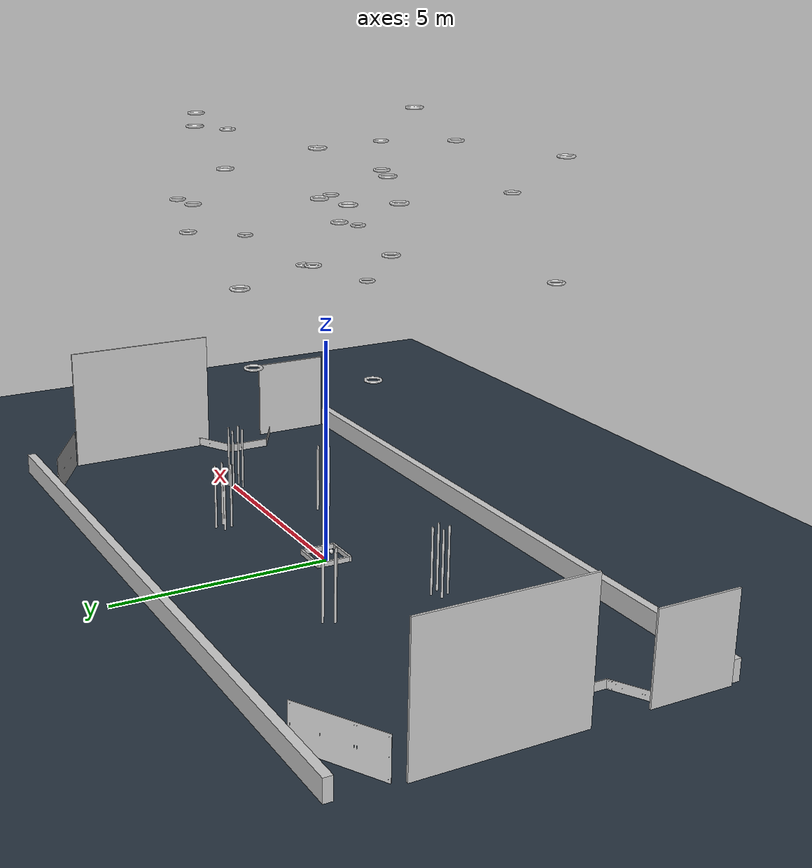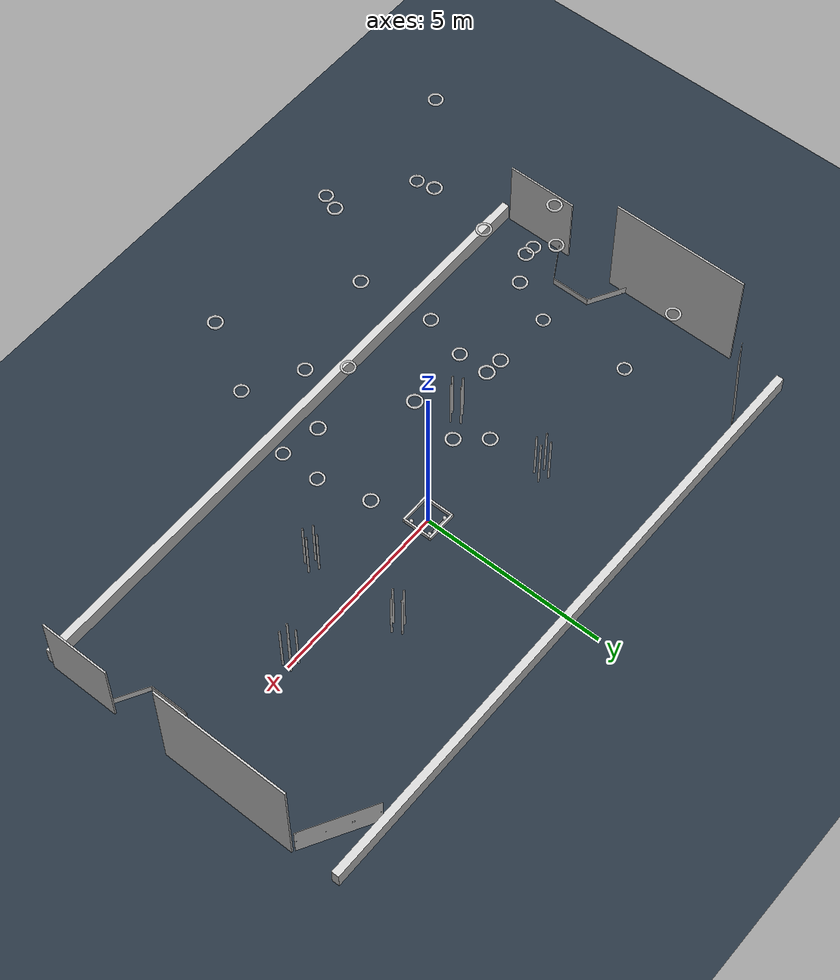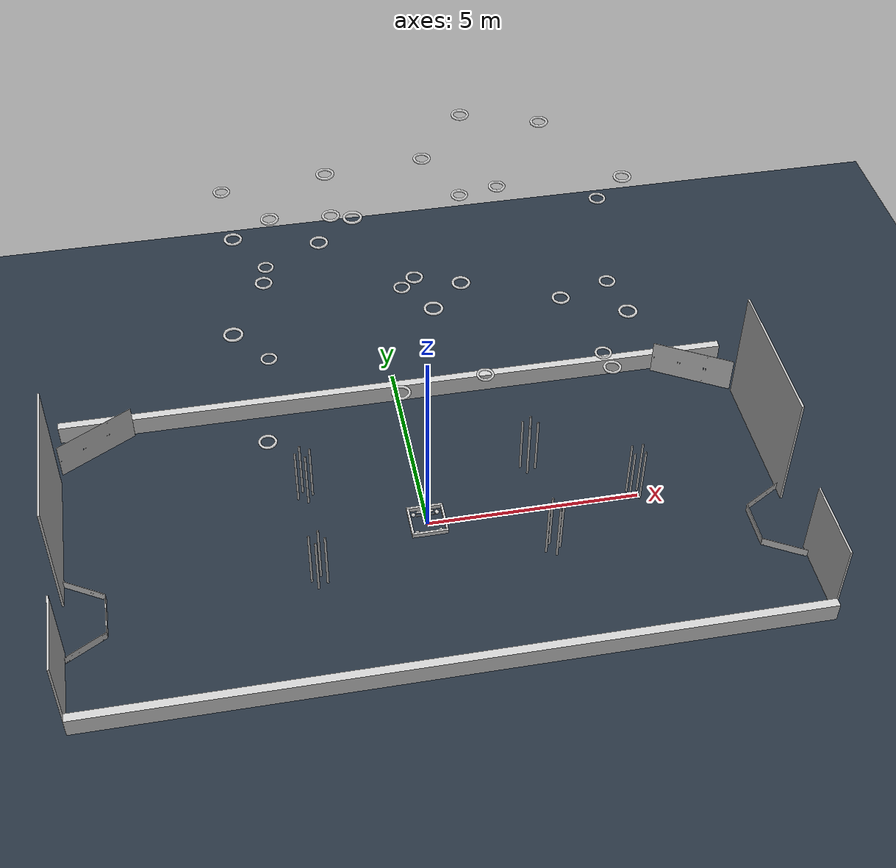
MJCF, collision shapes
<mujoco model="FRC" >
  <extension />
  <compiler angle="radian" coordinate="local" />
  <option timestep="0.003" integrator="implicitfast" cone="elliptic" />
  <size njmax="20000" nconmax="10000" />
  <default >
    <default class="visual" >
      <geom type="mesh" group="2" contype="0" conaffinity="0" />
    </default>
    <default class="collision" >
      <geom type="mesh" group="3" contype="1" conaffinity="1" />
    </default>
  </default>
  <asset >
    <texture name="groundplane" type="2d" builtin="checker" rgb1=".2 .3 .4" rgb2=".1 .1 .1" width="100" height="100" mark="cross" markrgb=".8 .8 .8" />
    <material name="groundplane" texture="groundplane" texrepeat="5 5" texuniform="true" />
    <material name="grey" rgba="0.4 0.4 0.4 1.0" />
    <material name="white" rgba="0.8 0.8 0.8 1.0" />
    <material name="bright_white" rgba="1 1 1 1.0" />
    <material name="black" rgba="0.2 0.2 0.2 1.0" />
    <material name="red" rgba="0.9 0 0 1.0" />
    <material name="blue" rgba="0 0 0.9 1.0" />
    <material name="bumper_blue" rgba="0.2 0.2 0.8 1.0" />
    <material name="orange" rgba="1 0.5 0 1.0" />
    <mesh name="audience_side_field_wall" file="frc_python/resources/AudienceSideFieldWall.stl" />
    <mesh name="scoring_side_field_wall" file="frc_python/resources/ScoringSideFieldWall.stl" />
    <mesh name="red_alliance_driver_station" file="frc_python/resources/RedAllianceDriverStation.stl" />
    <mesh name="blue_alliance_driver_station" file="frc_python/resources/BlueAllianceDriverStation.stl" />
    <mesh name="red_speaker" file="frc_python/resources/RedSpeaker.stl" />
    <mesh name="red_source" file="frc_python/resources/RedSource.stl" />
    <mesh name="red_stage" file="frc_python/resources/RedStage.stl" />
    <mesh name="red_amp" file="frc_python/resources/RedAmp.stl" />
    <mesh name="blue_speaker" file="frc_python/resources/BlueSpeaker.stl" />
    <mesh name="blue_source" file="frc_python/resources/BlueSource.stl" />
    <mesh name="blue_stage" file="frc_python/resources/BlueStage.stl" />
    <mesh name="blue_amp" file="frc_python/resources/BlueAmp.stl" />
    <mesh name="red_speaker_lower_left_wall_collision" file="frc_python/resources/collisions/RedSpeakerLowerLeftWall.stl" />
    <mesh name="red_speaker_lower_right_wall_collision" file="frc_python/resources/collisions/RedSpeakerLowerRightWall.stl" />
    <mesh name="red_source_wall_collision" file="frc_python/resources/collisions/RedSourceWall.stl" />
    <mesh name="red_stage_collision_1" file="frc_python/resources/collisions/RedStage1.stl" />
    <mesh name="red_stage_collision_2" file="frc_python/resources/collisions/RedStage2.stl" />
    <mesh name="red_stage_collision_3" file="frc_python/resources/collisions/RedStage2.stl" />
    <mesh name="blue_speaker_lower_left_wall_collision" file="frc_python/resources/collisions/BlueSpeakerLowerLeftWall.stl" />
    <mesh name="blue_speaker_lower_right_wall_collision" file="frc_python/resources/collisions/BlueSpeakerLowerRightWall.stl" />
    <mesh name="blue_source_wall_collision" file="frc_python/resources/collisions/BlueSourceWall.stl" />
    <mesh name="blue_stage_collision_1" file="frc_python/resources/collisions/BlueStage1.stl" />
    <mesh name="blue_stage_collision_2" file="frc_python/resources/collisions/BlueStage2.stl" />
    <mesh name="blue_stage_collision_3" file="frc_python/resources/collisions/BlueStage3.stl" />
    <mesh name="carpet" file="frc_python/resources/Carpet.stl" />
    <mesh name="red_tape" file="frc_python/resources/RedTape.stl" />
    <mesh name="blue_tape" file="frc_python/resources/BlueTape.stl" />
    <mesh name="white_tape" file="frc_python/resources/WhiteTape.stl" />
    <mesh name="note" file="frc_python/resources/collisions/Note.stl" />
    <mesh name="fl_swerve_module" file="frc_python/resources/subsystems/drivetrain/FLSwerveModule.stl" />
    <mesh name="fr_swerve_module" file="frc_python/resources/subsystems/drivetrain/FRSwerveModule.stl" />
    <mesh name="swerve_module_turret" file="frc_python/resources/subsystems/drivetrain/FLSwerveModuleTurret.stl" />
    <mesh name="swerve_module_wheel" file="frc_python/resources/subsystems/drivetrain/FLSwerveModuleWheel.stl" />
    <mesh name="drivetrain_frame" file="frc_python/resources/subsystems/drivetrain/DriveTrainFrame.stl" />
    <mesh name="bumpers" file="frc_python/resources/subsystems/drivetrain/Bumpers.stl" />
    <mesh name="intake_roller_1" file="frc_python/resources/subsystems/intake/IntakeRoller1.stl" />
  </asset>
  <worldbody >
    <light pos="1 -1 1.5" dir="-1 1 -1" diffuse="0.5 0.5 0.5" directional="true" />
    <geom name="floor" size="0 0 0.05" type="plane" material="groundplane" friction="1.3 0.1 0.01" />
    <geom mesh="audience_side_field_wall" class="visual" material="white" />
    <geom mesh="scoring_side_field_wall" class="visual" material="white" />
    <geom mesh="red_alliance_driver_station" class="visual" material="white" />
    <geom mesh="blue_alliance_driver_station" class="visual" material="white" />
    <geom mesh="red_speaker" class="visual" material="white" />
    <geom mesh="red_source" class="visual" material="white" />
    <geom mesh="red_stage" class="visual" material="white" />
    <geom mesh="red_amp" class="visual" material="white" />
    <geom mesh="blue_speaker" class="visual" material="white" />
    <geom mesh="blue_source" class="visual" material="white" />
    <geom mesh="blue_stage" class="visual" material="white" />
    <geom mesh="blue_amp" class="visual" material="white" />
    <geom mesh="carpet" class="visual" material="white" friction="1.3 0.1 0.01" />
    <geom mesh="red_tape" class="visual" material="white" />
    <geom mesh="blue_tape" class="visual" material="white" />
    <geom mesh="white_tape" class="visual" material="white" />
    <geom name="audience_side_field_wall_collision" type="box" pos="0 -4.206 0.2615" size="8.268 0.1 0.241" class="collision" material="white" friction="0.3 0.005 0.0001" />
    <geom name="scoring_side_field_wall_collision" type="box" pos="0 4.206 0.2615" size="8.268 0.1 0.241" class="collision" material="white" friction="0.3 0.005 0.0001" />
    <geom name="red_alliance_driver_station_collision_large" type="box" pos="8.2955 1.163 0.9955" size="0.0245 1.84 1.981" class="collision" material="white" friction="0.3 0.005 0.0001" />
    <geom name="red_alliance_driver_station_collision_small" type="box" pos="8.2975 -3.144 0.995" size="0.0225 0.9375 0.99" class="collision" material="white" friction="0.3 0.005 0.0001" />
    <geom name="blue_alliance_driver_station_collision_large" type="box" pos="-8.2955 0.9375 0.9955" size="0.0245 1.84 1.981" class="collision" material="white" friction="0.3 0.005 0.0001" />
    <geom name="blue_alliance_driver_station_collision_small" type="box" pos="-8.2975 -3.144 0.995" size="0.0225 0.9375 0.99" class="collision" material="white" friction="0.3 0.005 0.0001" />
    <geom name="red_alliance_speaker_low_wall_flat" type="box" pos="-7.355 -1.442 0.111" size="0.01 0.521 0.1" class="collision" material="white" friction="0.3 0.005 0.0001" />
    <geom name="blu_alliance_speaker_low_wall_flat" type="box" pos="7.355 -1.442 0.111" size="0.01 0.521 0.1" class="collision" material="white" friction="0.3 0.005 0.0001" />
    <geom mesh="red_speaker_lower_left_wall_collision" class="collision" material="white" />
    <geom mesh="red_speaker_lower_right_wall_collision" class="collision" material="white" />
    <geom mesh="red_source_wall_collision" class="collision" material="white" />
    <geom mesh="red_stage_collision_1" class="collision" material="white" />
    <geom mesh="red_stage_collision_2" class="collision" material="white" />
    <geom mesh="red_stage_collision_3" class="collision" material="white" />
    <geom mesh="blue_speaker_lower_left_wall_collision" class="collision" material="white" />
    <geom mesh="blue_speaker_lower_right_wall_collision" class="collision" material="white" />
    <geom mesh="blue_source_wall_collision" class="collision" material="white" />
    <geom mesh="blue_stage_collision_1" class="collision" material="white" />
    <geom mesh="blue_stage_collision_2" class="collision" material="white" />
    <geom mesh="blue_stage_collision_3" class="collision" material="white" />
    <body name="558.6319054791104" pos="-3.1793610518123385 0.2886909190360303 7.45999359786858" >
      <freejoint />
      <geom mesh="note" class="collision" material="white" friction="1.2 0.005 0.0001" solref="0.025 1" solimp="0.95 0.99 0.001" />
      <geom mesh="note" class="visual" material="orange" />
    </body>
    <body name="823.4756346977864" pos="2.53216398075498 1.7378051335209213 9.51759391938042" >
      <freejoint />
      <geom mesh="note" class="collision" material="white" friction="1.2 0.005 0.0001" solref="0.025 1" solimp="0.95 0.99 0.001" />
      <geom mesh="note" class="visual" material="orange" />
    </body>
    <body name="10.99541846601937" pos="-3.915865524291208 -2.9892707161557492 9.136163867498396" >
      <freejoint />
      <geom mesh="note" class="collision" material="white" friction="1.2 0.005 0.0001" solref="0.025 1" solimp="0.95 0.99 0.001" />
      <geom mesh="note" class="visual" material="orange" />
    </body>
    <body name="964.7117843382739" pos="-1.728240801226522 1.0255213873682347 8.337142053361344" >
      <freejoint />
      <geom mesh="note" class="collision" material="white" friction="1.2 0.005 0.0001" solref="0.025 1" solimp="0.95 0.99 0.001" />
      <geom mesh="note" class="visual" material="orange" />
    </body>
    <body name="448.9327354381226" pos="-0.4268785709057683 0.5121452592058242 6.748206589795496" >
      <freejoint />
      <geom mesh="note" class="collision" material="white" friction="1.2 0.005 0.0001" solref="0.025 1" solimp="0.95 0.99 0.001" />
      <geom mesh="note" class="visual" material="orange" />
    </body>
    <body name="240.38090129626477" pos="1.8365099496583284 2.1458088583641155 7.756335498623761" >
      <freejoint />
      <geom mesh="note" class="collision" material="white" friction="1.2 0.005 0.0001" solref="0.025 1" solimp="0.95 0.99 0.001" />
      <geom mesh="note" class="visual" material="orange" />
    </body>
    <body name="200.83236829732365" pos="1.0795665204206424 2.3593359077653835 9.441106669383283" >
      <freejoint />
      <geom mesh="note" class="collision" material="white" friction="1.2 0.005 0.0001" solref="0.025 1" solimp="0.95 0.99 0.001" />
      <geom mesh="note" class="visual" material="orange" />
    </body>
    <body name="711.7303307865593" pos="2.348113930783067 -1.3246812237138093 7.601571969697532" >
      <freejoint />
      <geom mesh="note" class="collision" material="white" friction="1.2 0.005 0.0001" solref="0.025 1" solimp="0.95 0.99 0.001" />
      <geom mesh="note" class="visual" material="orange" />
    </body>
    <body name="642.9414925278235" pos="3.914194671034715 0.4420565655187465 8.955183561166274" >
      <freejoint />
      <geom mesh="note" class="collision" material="white" friction="1.2 0.005 0.0001" solref="0.025 1" solimp="0.95 0.99 0.001" />
      <geom mesh="note" class="visual" material="orange" />
    </body>
    <body name="885.931398298469" pos="-0.2863176573476487 -0.1558178790549256 7.539786908086484" >
      <freejoint />
      <geom mesh="note" class="collision" material="white" friction="1.2 0.005 0.0001" solref="0.025 1" solimp="0.95 0.99 0.001" />
      <geom mesh="note" class="visual" material="orange" />
    </body>
    <body name="895.7524944814896" pos="-3.5327489504025253 -3.201390276244818 6.642757223181124" >
      <freejoint />
      <geom mesh="note" class="collision" material="white" friction="1.2 0.005 0.0001" solref="0.025 1" solimp="0.95 0.99 0.001" />
      <geom mesh="note" class="visual" material="orange" />
    </body>
    <body name="178.31499567797204" pos="3.1067010642318618 -3.0030559230491995 8.587153631104696" >
      <freejoint />
      <geom mesh="note" class="collision" material="white" friction="1.2 0.005 0.0001" solref="0.025 1" solimp="0.95 0.99 0.001" />
      <geom mesh="note" class="visual" material="orange" />
    </body>
    <body name="470.1216187688185" pos="-1.7861920964589144 1.0952545317970275 9.284958323728866" >
      <freejoint />
      <geom mesh="note" class="collision" material="white" friction="1.2 0.005 0.0001" solref="0.025 1" solimp="0.95 0.99 0.001" />
      <geom mesh="note" class="visual" material="orange" />
    </body>
    <body name="733.3097800302493" pos="0.8961013003762455 -1.4603980901473488 5.951977461159034" >
      <freejoint />
      <geom mesh="note" class="collision" material="white" friction="1.2 0.005 0.0001" solref="0.025 1" solimp="0.95 0.99 0.001" />
      <geom mesh="note" class="visual" material="orange" />
    </body>
    <body name="110.87423023289821" pos="-2.990962796180453 3.0022890654518815 5.6242296631256385" >
      <freejoint />
      <geom mesh="note" class="collision" material="white" friction="1.2 0.005 0.0001" solref="0.025 1" solimp="0.95 0.99 0.001" />
      <geom mesh="note" class="visual" material="orange" />
    </body>
    <body name="380.18243876608284" pos="3.865536967897257 1.6992390747032884 7.50936620030115" >
      <freejoint />
      <geom mesh="note" class="collision" material="white" friction="1.2 0.005 0.0001" solref="0.025 1" solimp="0.95 0.99 0.001" />
      <geom mesh="note" class="visual" material="orange" />
    </body>
    <body name="54.89306671074146" pos="-1.1458939763186908 -3.7340099965502063 7.988676832246549" >
      <freejoint />
      <geom mesh="note" class="collision" material="white" friction="1.2 0.005 0.0001" solref="0.025 1" solimp="0.95 0.99 0.001" />
      <geom mesh="note" class="visual" material="orange" />
    </body>
    <body name="313.7890747737755" pos="-3.2100199139214345 0.6516688629285197 5.1269183516767205" >
      <freejoint />
      <geom mesh="note" class="collision" material="white" friction="1.2 0.005 0.0001" solref="0.025 1" solimp="0.95 0.99 0.001" />
      <geom mesh="note" class="visual" material="orange" />
    </body>
    <body name="8.150749488211595" pos="0.3607631473278081 -1.4845163068784082 8.406159259791655" >
      <freejoint />
      <geom mesh="note" class="collision" material="white" friction="1.2 0.005 0.0001" solref="0.025 1" solimp="0.95 0.99 0.001" />
      <geom mesh="note" class="visual" material="orange" />
    </body>
    <body name="193.25675314041914" pos="-0.39774613082389276 -2.797166969158626 9.021119909667425" >
      <freejoint />
      <geom mesh="note" class="collision" material="white" friction="1.2 0.005 0.0001" solref="0.025 1" solimp="0.95 0.99 0.001" />
      <geom mesh="note" class="visual" material="orange" />
    </body>
    <body name="371.35911537205646" pos="3.7379850802393477 0.14218163717459031 6.593840769243613" >
      <freejoint />
      <geom mesh="note" class="collision" material="white" friction="1.2 0.005 0.0001" solref="0.025 1" solimp="0.95 0.99 0.001" />
      <geom mesh="note" class="visual" material="orange" />
    </body>
    <body name="417.3856361832396" pos="-2.1036333344604072 -0.2290273681470607 8.713411822845792" >
      <freejoint />
      <geom mesh="note" class="collision" material="white" friction="1.2 0.005 0.0001" solref="0.025 1" solimp="0.95 0.99 0.001" />
      <geom mesh="note" class="visual" material="orange" />
    </body>
    <body name="491.1313480838729" pos="-3.735964032152723 3.565721048974777 7.308222539288618" >
      <freejoint />
      <geom mesh="note" class="collision" material="white" friction="1.2 0.005 0.0001" solref="0.025 1" solimp="0.95 0.99 0.001" />
      <geom mesh="note" class="visual" material="orange" />
    </body>
    <body name="862.787954661622" pos="-2.9179374967660063 1.045896581012638 8.406706863032616" >
      <freejoint />
      <geom mesh="note" class="collision" material="white" friction="1.2 0.005 0.0001" solref="0.025 1" solimp="0.95 0.99 0.001" />
      <geom mesh="note" class="visual" material="orange" />
    </body>
    <body name="351.7808190458187" pos="-1.5560095945757357 -1.1042032283700962 9.887034033319859" >
      <freejoint />
      <geom mesh="note" class="collision" material="white" friction="1.2 0.005 0.0001" solref="0.025 1" solimp="0.95 0.99 0.001" />
      <geom mesh="note" class="visual" material="orange" />
    </body>
    <body name="490.1714118084751" pos="-3.670073232842314 0.4176173340240954 8.503821386674083" >
      <freejoint />
      <geom mesh="note" class="collision" material="white" friction="1.2 0.005 0.0001" solref="0.025 1" solimp="0.95 0.99 0.001" />
      <geom mesh="note" class="visual" material="orange" />
    </body>
    <body name="88.21335507348749" pos="0.2624283573642714 2.0789241204711812 8.693721131655419" >
      <freejoint />
      <geom mesh="note" class="collision" material="white" friction="1.2 0.005 0.0001" solref="0.025 1" solimp="0.95 0.99 0.001" />
      <geom mesh="note" class="visual" material="orange" />
    </body>
    <body name="906.8950603747713" pos="3.143029628015679 -2.4435659513563515 6.688794027997718" >
      <freejoint />
      <geom mesh="note" class="collision" material="white" friction="1.2 0.005 0.0001" solref="0.025 1" solimp="0.95 0.99 0.001" />
      <geom mesh="note" class="visual" material="orange" />
    </body>
    <body name="800.6858921652445" pos="3.3804631989604035 -1.1455075471620075 5.843089108955965" >
      <freejoint />
      <geom mesh="note" class="collision" material="white" friction="1.2 0.005 0.0001" solref="0.025 1" solimp="0.95 0.99 0.001" />
      <geom mesh="note" class="visual" material="orange" />
    </body>
    <body name="274.74434674879035" pos="1.1405169114426066 2.5506353894457696 7.330677790249894" >
      <freejoint />
      <geom mesh="note" class="collision" material="white" friction="1.2 0.005 0.0001" solref="0.025 1" solimp="0.95 0.99 0.001" />
      <geom mesh="note" class="visual" material="orange" />
    </body>
    <body name="robot" pos="0 0 0" >
      <freejoint />
      <inertial pos="0 0 0" mass="40" diaginertia="5 5 4.06585208333" />
      <site name="imu_site" pos="0 0 0" />
      <body name="fl_swerve_module_turret" pos="0.276225 0.276225 0" >
        <inertial pos="0 0 0" mass="1.5" diaginertia="0.02 0.02 0.02" />
        <joint name="fl_swerve_module_suspension" type="slide" axis="0 0 1" stiffness="50000" damping="1000" springref="0" actuatorfrclimited="false" />
        <joint name="fl_swerve_module_turret_hinge" type="hinge" axis="0 0 1" damping="0.8" armature="0.0015" actuatorfrclimited="false" />
        <body name="fl_swerve_module_wheel" pos="0 0 0.0508" >
          <inertial pos="0 0 0" mass="0.4" diaginertia="0.000702 0.000499 0.000499" />
          <joint name="fl_swerve_module_wheel_hinge" type="hinge" axis="0 1 0" actuatorfrcrange="-9.70 9.70" actuatorfrclimited="true" frictionloss="0.81" />
          <geom mesh="swerve_module_wheel" class="visual" material="white" pos="0.066675 0.066675 -0.0508" />
          <geom name="fl_swerve_module_wheel_collision" type="sphere" pos="0 0 0" size="0.0508" class="collision" material="white" friction="2.255 0.001 0.01" />
        </body>
        <geom mesh="swerve_module_turret" class="visual" material="white" pos="0.066675 0.066675 0" />
      </body>
      <body name="fr_swerve_module_turret" pos="0.276225 -0.276225 0" >
        <inertial pos="0 0 0" mass="1.5" diaginertia="0.02 0.02 0.02" />
        <joint name="fr_swerve_module_suspension" type="slide" axis="0 0 1" stiffness="50000" damping="1000" springref="0" actuatorfrclimited="false" />
        <joint name="fr_swerve_module_turret_hinge" type="hinge" axis="0 0 1" damping="0.8" armature="0.0015" actuatorfrclimited="false" />
        <body name="fr_swerve_module_wheel" pos="0 0 0.0508" >
          <inertial pos="0 0 0" mass="0.4" diaginertia="0.000702 0.000499 0.000499" />
          <joint name="fr_swerve_module_wheel_hinge" type="hinge" axis="0 1 0" actuatorfrcrange="-9.70 9.70" actuatorfrclimited="true" frictionloss="0.81" />
          <geom mesh="swerve_module_wheel" class="visual" material="white" pos="0.066675 0.066675 -0.0508" />
          <geom name="fr_swerve_module_wheel_collision" type="sphere" pos="0 0 0" size="0.0508" class="collision" material="white" friction="2.255 0.001 0.01" />
        </body>
        <geom mesh="swerve_module_turret" class="visual" material="white" pos="0.066675 0.066675 0" />
      </body>
      <body name="bl_swerve_module_turret" pos="-0.276225 0.276225 0" >
        <inertial pos="0 0 0" mass="1.5" diaginertia="0.02 0.02 0.02" />
        <joint name="bl_swerve_module_suspension" type="slide" axis="0 0 1" stiffness="50000" damping="1000" springref="0" actuatorfrclimited="false" />
        <joint name="bl_swerve_module_turret_hinge" type="hinge" axis="0 0 1" damping="0.8" armature="0.0015" actuatorfrclimited="false" />
        <body name="bl_swerve_module_wheel" pos="0 0 0.0508" >
          <inertial pos="0 0 0" mass="0.4" diaginertia="0.000702 0.000499 0.000499" />
          <joint name="bl_swerve_module_wheel_hinge" type="hinge" axis="0 1 0" actuatorfrcrange="-9.70 9.70" actuatorfrclimited="true" frictionloss="0.81" />
          <geom mesh="swerve_module_wheel" class="visual" material="white" pos="0.066675 0.066675 -0.0508" />
          <geom name="bl_swerve_module_wheel_collision" type="sphere" pos="0 0 0" size="0.0508" class="collision" material="white" friction="2.255 0.001 0.01" />
        </body>
        <geom mesh="swerve_module_turret" class="visual" material="white" pos="0.066675 0.066675 0" />
      </body>
      <body name="br_swerve_module_turret" pos="-0.276225 -0.276225 0" >
        <inertial pos="0 0 0" mass="1.5" diaginertia="0.02 0.02 0.02" />
        <joint name="br_swerve_module_suspension" type="slide" axis="0 0 1" stiffness="50000" damping="1000" springref="0" actuatorfrclimited="false" />
        <joint name="br_swerve_module_turret_hinge" type="hinge" axis="0 0 1" damping="0.8" armature="0.0015" actuatorfrclimited="false" />
        <body name="br_swerve_module_wheel" pos="0 0 0.0508" >
          <inertial pos="0 0 0" mass="0.4" diaginertia="0.000702 0.000499 0.000499" />
          <joint name="br_swerve_module_wheel_hinge" type="hinge" axis="0 1 0" actuatorfrcrange="-9.70 9.70" actuatorfrclimited="true" frictionloss="0.81" />
          <geom mesh="swerve_module_wheel" class="visual" material="white" pos="0.066675 0.066675 -0.0508" />
          <geom name="br_swerve_module_wheel_collision" type="sphere" pos="0 0 0" size="0.0508" class="collision" material="white" friction="2.255 0.001 0.01" />
        </body>
        <geom mesh="swerve_module_turret" class="visual" material="white" pos="0.066675 0.066675 0" />
      </body>
      <body name="intake_roller_1" pos="0 0.25 0.026" >
        <inertial pos="0 0 0" mass="2.5" diaginertia="0.06 0.06 0.06" />
        <joint name="intake_roller_1_hinge" type="hinge" axis="1 0 0" damping="0.8" armature="0.0015" actuatorfrclimited="false" />
        <geom mesh="intake_roller_1" class="visual" material="white" pos="0 0.606 0.044" />
        <geom type="cylinder" pos="0 0 0" size="0.0125 0.211" euler="0 1.5707 0" class="collision" material="white" friction="1.5 0.1 0.01" />
      </body>
      <body name="intake_roller_2" pos="0 0.323 0.07" >
        <inertial pos="0 0 0" mass="2.5" diaginertia="0.06 0.06 0.06" />
        <joint name="intake_roller_2_hinge" type="hinge" axis="-1 0 0" damping="0.8" armature="0.0015" actuatorfrclimited="false" />
        <geom type="cylinder" pos="0 0 0" size="0.025 0.2" euler="0 1.5707 0" class="collision" material="white" friction="1.5 0.1 0.01" />
        <geom mesh="intake_roller_1" class="visual" material="white" pos="0 0.606 0.044" />
      </body>
      <geom type="box" pos="0 -0.3935 0.126" size="0.422 0.0255 0.057" class="collision" material="white" friction="0.6 0.1 0.01" solimp="0.8 0.95 0.01" solref="0.02 1.5" />
      <geom type="box" pos="0 0.3935 0.126" size="0.422 0.0255 0.057" class="collision" material="white" friction="0.6 0.1 0.01" solimp="0.8 0.95 0.01" solref="0.02 1.5" />
      <geom type="box" pos="0.3965 0.0 0.126" size="0.0255 0.368 0.057" class="collision" material="white" friction="0.6 0.1 0.01" solimp="0.8 0.95 0.01" solref="0.02 1.5" />
      <geom type="box" pos="-0.3965 0.0 0.126" size="0.0255 0.368 0.057" class="collision" material="white" friction="0.6 0.1 0.01" solimp="0.8 0.95 0.01" solref="0.02 1.5" />
      <geom mesh="bumpers" class="visual" material="bumper_blue" pos="0 0 0.04" />
      <geom mesh="drivetrain_frame" class="visual" material="white" />
      <geom mesh="fl_swerve_module" class="visual" material="white" />
      <geom mesh="fr_swerve_module" class="visual" material="white" />
      <geom mesh="fl_swerve_module" class="visual" material="white" axisangle="0 0 1 3.1416" />
      <geom mesh="fr_swerve_module" class="visual" material="white" axisangle="0 0 1 3.1416" />
    </body>
  </worldbody>
  <actuator >
    <dcmotor name="fl_swerve_module_turret_motor" joint="fl_swerve_module_turret_hinge" gear="26.09" nominal="12 4.05 788.54" ctrlrange="-12 12" ctrllimited="true" input="voltage" />
    <dcmotor name="fl_swerve_module_wheel_motor" joint="fl_swerve_module_wheel_hinge" gear="5.27" nominal="12 9.2 605.80" ctrlrange="-12 12" ctrllimited="true" input="voltage" />
    <dcmotor name="fr_swerve_module_turret_motor" joint="fr_swerve_module_turret_hinge" gear="26.09" nominal="12 4.05 788.54" ctrlrange="-12 12" ctrllimited="true" input="voltage" />
    <dcmotor name="fr_swerve_module_wheel_motor" joint="fr_swerve_module_wheel_hinge" gear="5.27" nominal="12 9.2 605.80" ctrlrange="-12 12" ctrllimited="true" input="voltage" />
    <dcmotor name="bl_swerve_module_turret_motor" joint="bl_swerve_module_turret_hinge" gear="26.09" nominal="12 4.05 788.54" ctrlrange="-12 12" ctrllimited="true" input="voltage" />
    <dcmotor name="bl_swerve_module_wheel_motor" joint="bl_swerve_module_wheel_hinge" gear="5.27" nominal="12 9.2 605.80" ctrlrange="-12 12" ctrllimited="true" input="voltage" />
    <dcmotor name="br_swerve_module_turret_motor" joint="br_swerve_module_turret_hinge" gear="26.09" nominal="12 4.05 788.54" ctrlrange="-12 12" ctrllimited="true" input="voltage" />
    <dcmotor name="br_swerve_module_wheel_motor" joint="br_swerve_module_wheel_hinge" gear="5.27" nominal="12 9.2 605.80" ctrlrange="-12 12" ctrllimited="true" input="voltage" />
    <dcmotor name="intake_roller_1_motor" joint="intake_roller_1_hinge" gear="2.0" nominal="12 9.2 605.80" ctrlrange="-12 12" ctrllimited="true" input="voltage" />
  </actuator>
  <sensor >
    <gyro name="chassis_gyro" site="imu_site" />
  </sensor>
  <equality >
    <joint joint1="intake_roller_1_hinge" joint2="intake_roller_2_hinge" />
  </equality>
</mujoco>
